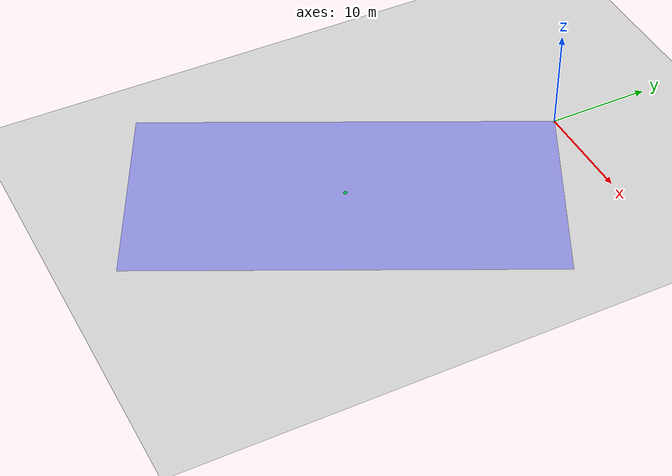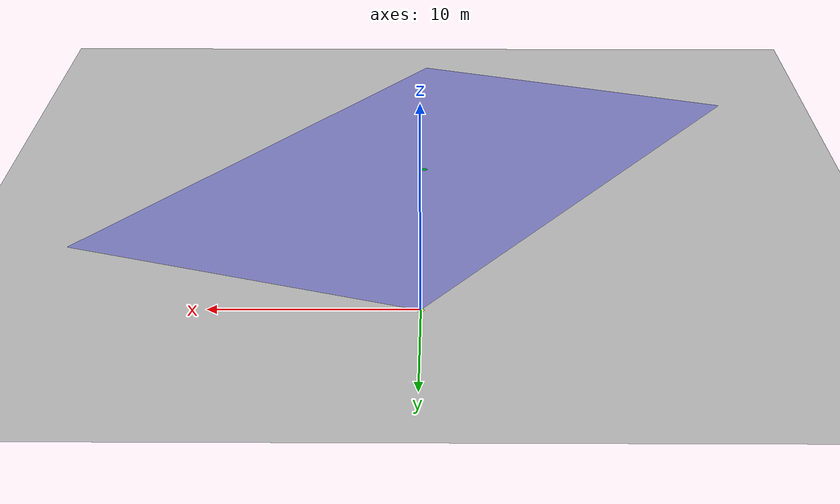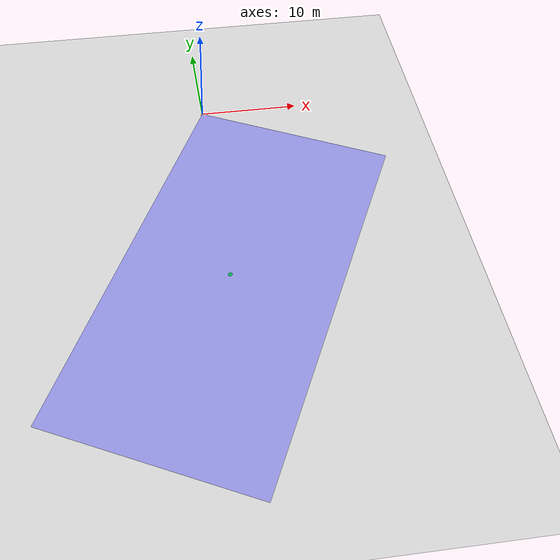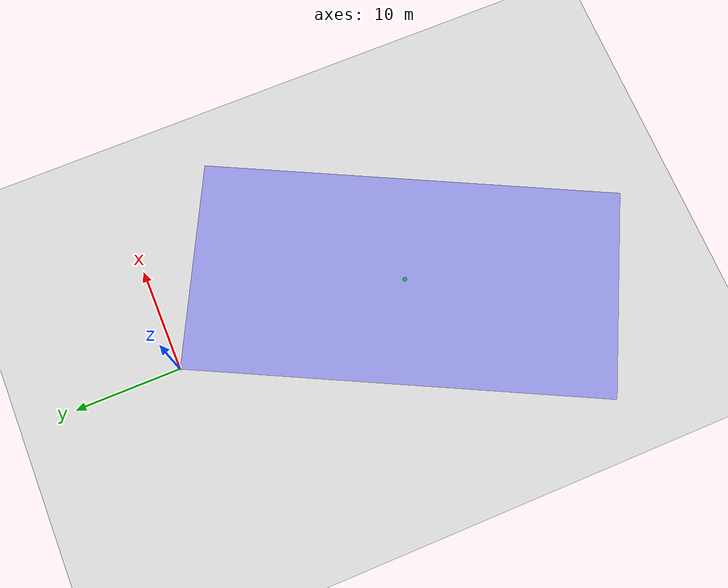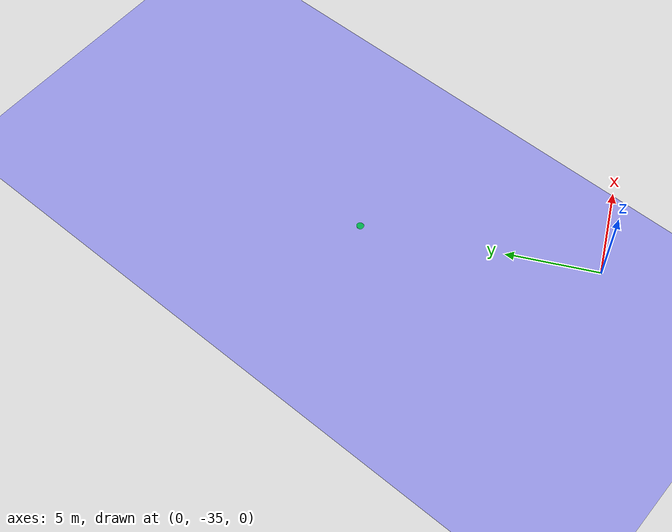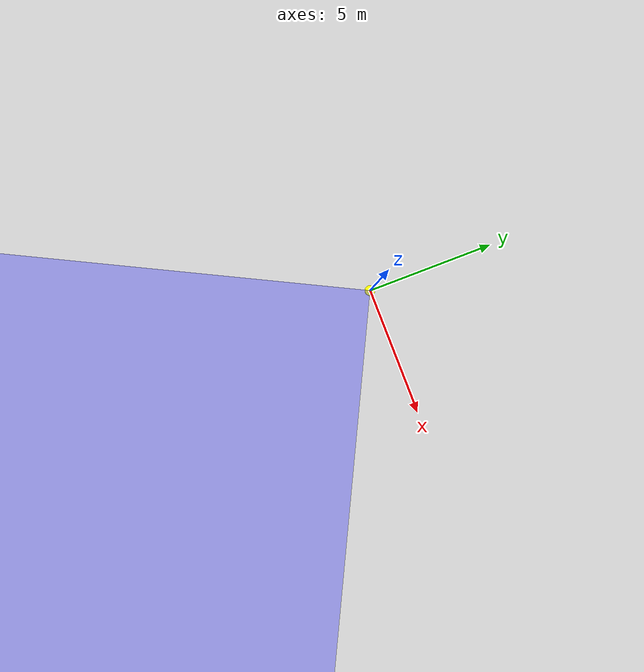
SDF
<?xml version="1.0" ?>
<sdf version="1.10">
  <world name="random_boxes_world">

    <!-- ================= PLUGINS ================= -->
    <plugin filename="gz-sim-physics-system"
            name="gz::sim::systems::Physics"/>
    <plugin filename="gz-sim-user-commands-system"
            name="gz::sim::systems::UserCommands"/>
    <plugin filename="gz-sim-scene-broadcaster-system"
            name="gz::sim::systems::SceneBroadcaster"/>
    <plugin filename="gz-sim-sensors-system"
            name="gz::sim::systems::Sensors">
      <render_engine>ogre2</render_engine>
    </plugin>
    <plugin filename="gz-sim-imu-system"
            name="gz::sim::systems::Imu"/>
    <plugin filename="gz-sim-magnetometer-system"
            name="gz::sim::systems::Magnetometer"/>
    <plugin filename="gz-sim-navsat-system"
            name="gz::sim::systems::NavSat"/>

    <!-- ============ COORDENADAS GEOGRÁFICAS ============ -->
    <spherical_coordinates>
      <surface_model>EARTH_WGS84</surface_model>
      <latitude_deg>-25.33057356422622</latitude_deg>
      <longitude_deg>-57.518128840272304</longitude_deg>
      <elevation>80.0</elevation>
      <heading_deg>0</heading_deg>
    </spherical_coordinates>

    <!-- ================= FÍSICA ================= -->
    <physics name="1ms" type="ignored">
      <max_step_size>0.001</max_step_size>
      <real_time_factor>1</real_time_factor>
      <real_time_update_rate>1000</real_time_update_rate>
    </physics>

    <gravity>0 0 -9.8</gravity>

    <!-- ================= ESCENA ================= -->
    <scene>
      <ambient>0.4 0.4 0.4 1</ambient>
      <background>0.7 0.7 0.7 1</background>
      <shadows>true</shadows>
    </scene>

    <!-- ================= SUELO ================= -->
    <model name="ground_plane">
      <static>true</static>
      <link name="link">
        <collision name="collision">
          <geometry>
            <plane>
              <normal>0 0 1</normal>
              <size>100 100</size>
            </plane>
          </geometry>
        </collision>
        <visual name="visual">
          <geometry>
            <plane>
              <normal>0 0 1</normal>
              <size>100 100</size>
            </plane>
          </geometry>
          <material>
            <diffuse>0.8 0.8 0.8 1</diffuse>
          </material>
        </visual>
      </link>
    </model>

    <!-- ================= ORIGEN ================= -->
    <model name="origin_marker">
      <static>true</static>
      <pose>0 0 0.0 0 0 0</pose>
      <link name="link">
        <visual name="visual">
          <geometry>
            <cylinder>
              <radius>0.2</radius>
              <length>0.002</length>
            </cylinder>
          </geometry>
          <material>
            <diffuse>1 1 0 1</diffuse>
          </material>
        </visual>
      </link>
    </model>

    <!-- ================= MARCADORES EXISTENTES ================= -->
    <model name="center_marker">
      <static>true</static>
      <pose>0 -22.36067977 0.01 0 0 0</pose>
      <link name="link">
        <visual name="visual">
          <geometry>
            <cylinder>
              <radius>0.2</radius>
              <length>0.002</length>
            </cylinder>
          </geometry>
          <material>
            <diffuse>0 1 0 1</diffuse>
          </material>
        </visual>
      </link>
    </model>

    <!-- ================= RECTÁNGULO ================= -->
    <model name="rotated_rectangle">
      <static>true</static>
      <pose>0 -22.36067977 0.01 0 0 1.107148718</pose>
      <link name="link">
        <visual name="visual">
          <geometry>
            <box>
              <size>40 20 0.02</size>
            </box>
          </geometry>
          <material>
            <diffuse>0 0 1 0.3</diffuse>
          </material>
        </visual>
      </link>
    </model>

    <!-- ================= SOL ================= -->
    <light name="sun" type="directional">
      <pose>0 0 10 0 0 0</pose>
      <cast_shadows>true</cast_shadows>
      <direction>-0.5 0.1 -0.9</direction>
      <diffuse>0.8 0.8 0.8 1</diffuse>
      <specular>0.2 0.2 0.2 1</specular>
    </light>

  </world>
</sdf>
